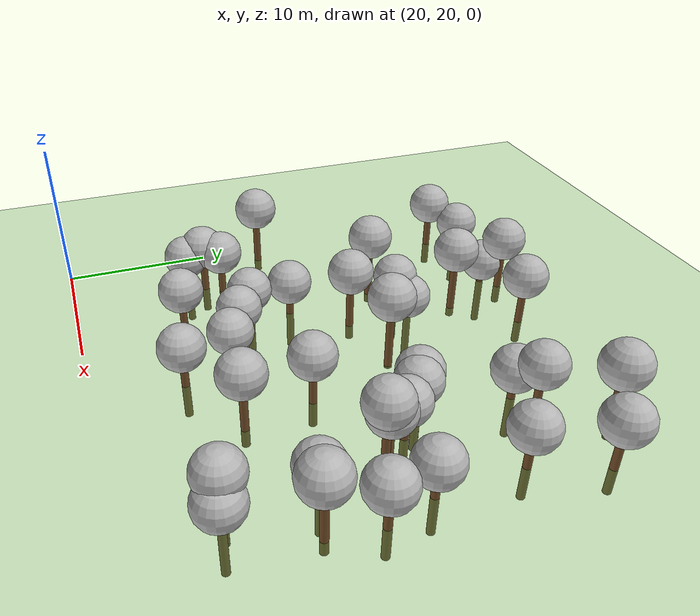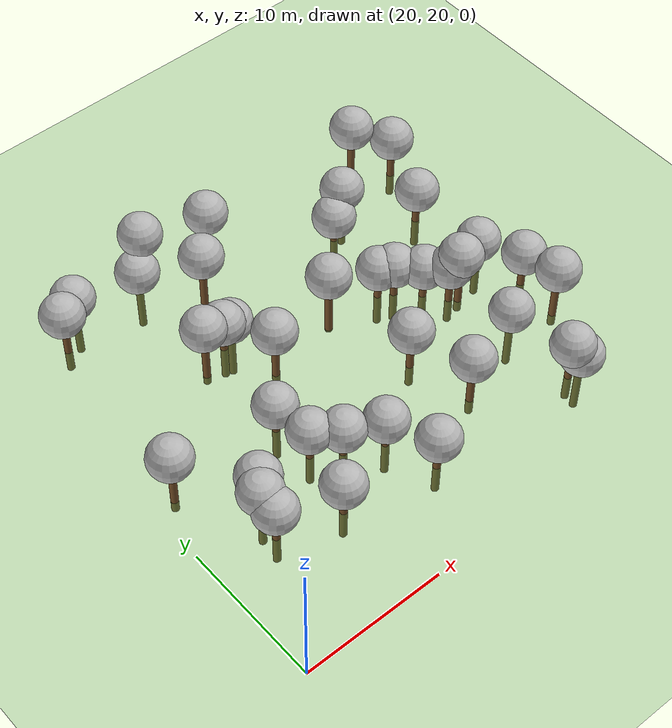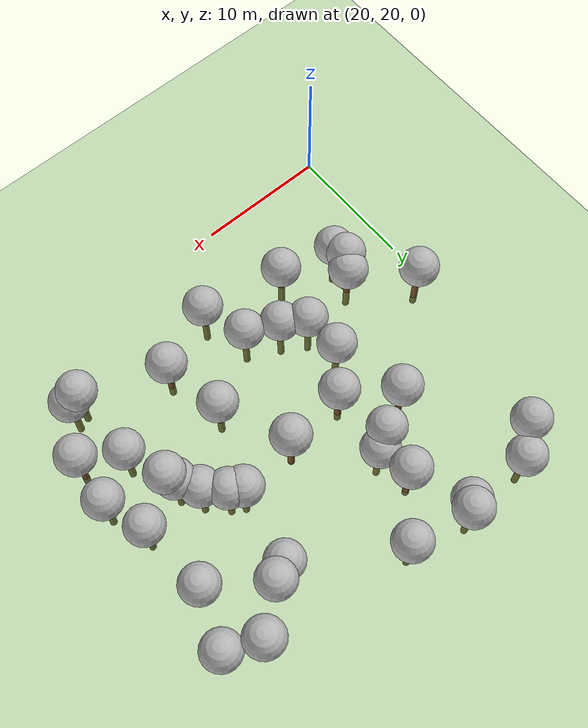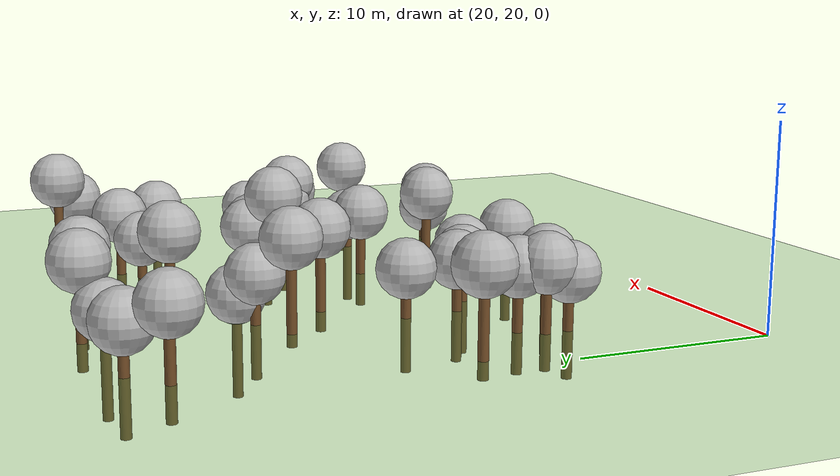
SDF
<sdf version="1.5">
 <world name="default">
  <model name="tree_simple475">
   <static>1</static>
   <link name="link">
    <pose>0 0 0.1 0 -0 0</pose>
    <collision name="collision_trunk">
     <pose>0 0 2 0 -0 0</pose>
     <geometry><cylinder><radius>0.25</radius><length>4</length></cylinder></geometry>
    </collision>
    <collision name="collision_treetop">
     <pose>0 0 5.2 0 -0 0</pose>
     <geometry><sphere><radius>1.5</radius></sphere></geometry>
    </collision>
    <visual name="trunk">
     <pose>0 0 2 0 -0 0</pose>
     <geometry><cylinder><radius>0.25</radius><length>4</length></cylinder></geometry>
     <material>
      <script>
       <uri>model://tree_simple/scripts</uri>
       <uri>model://tree_simple/materials/textures</uri>
       <name>TreeSimple/Trunk</name>
      </script>
     </material>
    </visual>
    <visual name="treetop">
     <pose>0 0 5.2 0 -0 0</pose>
     <geometry><sphere><radius>1.5</radius></sphere></geometry>
     <material>
      <script>
       <uri>model://tree_simple/scripts</uri>
       <uri>model://tree_simple/materials/textures</uri>
       <name>TreeSimple/Treetop</name>
      </script>
     </material>
    </visual>
   </link>
   <pose>30.9431222124 49.7431013716 -1.484301673260343 0 -0 0</pose>
  </model>
  <model name="tree_simple459">
   <static>1</static>
   <link name="link">
    <pose>0 0 0.1 0 -0 0</pose>
    <collision name="collision_trunk">
     <pose>0 0 2 0 -0 0</pose>
     <geometry><cylinder><radius>0.25</radius><length>4</length></cylinder></geometry>
    </collision>
    <collision name="collision_treetop">
     <pose>0 0 5.2 0 -0 0</pose>
     <geometry><sphere><radius>1.5</radius></sphere></geometry>
    </collision>
    <visual name="trunk">
     <pose>0 0 2 0 -0 0</pose>
     <geometry><cylinder><radius>0.25</radius><length>4</length></cylinder></geometry>
     <material>
      <script>
       <uri>model://tree_simple/scripts</uri>
       <uri>model://tree_simple/materials/textures</uri>
       <name>TreeSimple/Trunk</name>
      </script>
     </material>
    </visual>
    <visual name="treetop">
     <pose>0 0 5.2 0 -0 0</pose>
     <geometry><sphere><radius>1.5</radius></sphere></geometry>
     <material>
      <script>
       <uri>model://tree_simple/scripts</uri>
       <uri>model://tree_simple/materials/textures</uri>
       <name>TreeSimple/Treetop</name>
      </script>
     </material>
    </visual>
   </link>
   <pose>23.3051385383 47.6025012909 -1.8423031485954686 0 -0 0</pose>
  </model>
  <model name="tree_simple452">
   <static>1</static>
   <link name="link">
    <pose>0 0 0.1 0 -0 0</pose>
    <collision name="collision_trunk">
     <pose>0 0 2 0 -0 0</pose>
     <geometry><cylinder><radius>0.25</radius><length>4</length></cylinder></geometry>
    </collision>
    <collision name="collision_treetop">
     <pose>0 0 5.2 0 -0 0</pose>
     <geometry><sphere><radius>1.5</radius></sphere></geometry>
    </collision>
    <visual name="trunk">
     <pose>0 0 2 0 -0 0</pose>
     <geometry><cylinder><radius>0.25</radius><length>4</length></cylinder></geometry>
     <material>
      <script>
       <uri>model://tree_simple/scripts</uri>
       <uri>model://tree_simple/materials/textures</uri>
       <name>TreeSimple/Trunk</name>
      </script>
     </material>
    </visual>
    <visual name="treetop">
     <pose>0 0 5.2 0 -0 0</pose>
     <geometry><sphere><radius>1.5</radius></sphere></geometry>
     <material>
      <script>
       <uri>model://tree_simple/scripts</uri>
       <uri>model://tree_simple/materials/textures</uri>
       <name>TreeSimple/Treetop</name>
      </script>
     </material>
    </visual>
   </link>
   <pose>21.4881506157 34.0286005496 -1.0136431567923827 0 -0 0</pose>
  </model>
  <model name="tree_simple449">
   <static>1</static>
   <link name="link">
    <pose>0 0 0.1 0 -0 0</pose>
    <collision name="collision_trunk">
     <pose>0 0 2 0 -0 0</pose>
     <geometry><cylinder><radius>0.25</radius><length>4</length></cylinder></geometry>
    </collision>
    <collision name="collision_treetop">
     <pose>0 0 5.2 0 -0 0</pose>
     <geometry><sphere><radius>1.5</radius></sphere></geometry>
    </collision>
    <visual name="trunk">
     <pose>0 0 2 0 -0 0</pose>
     <geometry><cylinder><radius>0.25</radius><length>4</length></cylinder></geometry>
     <material>
      <script>
       <uri>model://tree_simple/scripts</uri>
       <uri>model://tree_simple/materials/textures</uri>
       <name>TreeSimple/Trunk</name>
      </script>
     </material>
    </visual>
    <visual name="treetop">
     <pose>0 0 5.2 0 -0 0</pose>
     <geometry><sphere><radius>1.5</radius></sphere></geometry>
     <material>
      <script>
       <uri>model://tree_simple/scripts</uri>
       <uri>model://tree_simple/materials/textures</uri>
       <name>TreeSimple/Treetop</name>
      </script>
     </material>
    </visual>
   </link>
   <pose>32.2301413543 37.584175072 -1.1562823140493863 0 -0 0</pose>
  </model>
  <model name="tree_simple435">
   <static>1</static>
   <link name="link">
    <pose>0 0 0.1 0 -0 0</pose>
    <collision name="collision_trunk">
     <pose>0 0 2 0 -0 0</pose>
     <geometry><cylinder><radius>0.25</radius><length>4</length></cylinder></geometry>
    </collision>
    <collision name="collision_treetop">
     <pose>0 0 5.2 0 -0 0</pose>
     <geometry><sphere><radius>1.5</radius></sphere></geometry>
    </collision>
    <visual name="trunk">
     <pose>0 0 2 0 -0 0</pose>
     <geometry><cylinder><radius>0.25</radius><length>4</length></cylinder></geometry>
     <material>
      <script>
       <uri>model://tree_simple/scripts</uri>
       <uri>model://tree_simple/materials/textures</uri>
       <name>TreeSimple/Trunk</name>
      </script>
     </material>
    </visual>
    <visual name="treetop">
     <pose>0 0 5.2 0 -0 0</pose>
     <geometry><sphere><radius>1.5</radius></sphere></geometry>
     <material>
      <script>
       <uri>model://tree_simple/scripts</uri>
       <uri>model://tree_simple/materials/textures</uri>
       <name>TreeSimple/Treetop</name>
      </script>
     </material>
    </visual>
   </link>
   <pose>25.0532985597 49.162593115 -2.878326971186958 0 -0 0</pose>
  </model>
  <model name="tree_simple426">
   <static>1</static>
   <link name="link">
    <pose>0 0 0.1 0 -0 0</pose>
    <collision name="collision_trunk">
     <pose>0 0 2 0 -0 0</pose>
     <geometry><cylinder><radius>0.25</radius><length>4</length></cylinder></geometry>
    </collision>
    <collision name="collision_treetop">
     <pose>0 0 5.2 0 -0 0</pose>
     <geometry><sphere><radius>1.5</radius></sphere></geometry>
    </collision>
    <visual name="trunk">
     <pose>0 0 2 0 -0 0</pose>
     <geometry><cylinder><radius>0.25</radius><length>4</length></cylinder></geometry>
     <material>
      <script>
       <uri>model://tree_simple/scripts</uri>
       <uri>model://tree_simple/materials/textures</uri>
       <name>TreeSimple/Trunk</name>
      </script>
     </material>
    </visual>
    <visual name="treetop">
     <pose>0 0 5.2 0 -0 0</pose>
     <geometry><sphere><radius>1.5</radius></sphere></geometry>
     <material>
      <script>
       <uri>model://tree_simple/scripts</uri>
       <uri>model://tree_simple/materials/textures</uri>
       <name>TreeSimple/Treetop</name>
      </script>
     </material>
    </visual>
   </link>
   <pose>48.2961501598 36.1951986296 -2.893288074802907 0 -0 0</pose>
  </model>
  <model name="tree_simple414">
   <static>1</static>
   <link name="link">
    <pose>0 0 0.1 0 -0 0</pose>
    <collision name="collision_trunk">
     <pose>0 0 2 0 -0 0</pose>
     <geometry><cylinder><radius>0.25</radius><length>4</length></cylinder></geometry>
    </collision>
    <collision name="collision_treetop">
     <pose>0 0 5.2 0 -0 0</pose>
     <geometry><sphere><radius>1.5</radius></sphere></geometry>
    </collision>
    <visual name="trunk">
     <pose>0 0 2 0 -0 0</pose>
     <geometry><cylinder><radius>0.25</radius><length>4</length></cylinder></geometry>
     <material>
      <script>
       <uri>model://tree_simple/scripts</uri>
       <uri>model://tree_simple/materials/textures</uri>
       <name>TreeSimple/Trunk</name>
      </script>
     </material>
    </visual>
    <visual name="treetop">
     <pose>0 0 5.2 0 -0 0</pose>
     <geometry><sphere><radius>1.5</radius></sphere></geometry>
     <material>
      <script>
       <uri>model://tree_simple/scripts</uri>
       <uri>model://tree_simple/materials/textures</uri>
       <name>TreeSimple/Treetop</name>
      </script>
     </material>
    </visual>
   </link>
   <pose>44.7953546514 35.1223055557 -2.1425868996998987 0 -0 0</pose>
  </model>
  <model name="tree_simple402">
   <static>1</static>
   <link name="link">
    <pose>0 0 0.1 0 -0 0</pose>
    <collision name="collision_trunk">
     <pose>0 0 2 0 -0 0</pose>
     <geometry><cylinder><radius>0.25</radius><length>4</length></cylinder></geometry>
    </collision>
    <collision name="collision_treetop">
     <pose>0 0 5.2 0 -0 0</pose>
     <geometry><sphere><radius>1.5</radius></sphere></geometry>
    </collision>
    <visual name="trunk">
     <pose>0 0 2 0 -0 0</pose>
     <geometry><cylinder><radius>0.25</radius><length>4</length></cylinder></geometry>
     <material>
      <script>
       <uri>model://tree_simple/scripts</uri>
       <uri>model://tree_simple/materials/textures</uri>
       <name>TreeSimple/Trunk</name>
      </script>
     </material>
    </visual>
    <visual name="treetop">
     <pose>0 0 5.2 0 -0 0</pose>
     <geometry><sphere><radius>1.5</radius></sphere></geometry>
     <material>
      <script>
       <uri>model://tree_simple/scripts</uri>
       <uri>model://tree_simple/materials/textures</uri>
       <name>TreeSimple/Treetop</name>
      </script>
     </material>
    </visual>
   </link>
   <pose>46.1530364681 25.5114731744 -2.1583834755632894 0 -0 0</pose>
  </model>
  <model name="tree_simple388">
   <static>1</static>
   <link name="link">
    <pose>0 0 0.1 0 -0 0</pose>
    <collision name="collision_trunk">
     <pose>0 0 2 0 -0 0</pose>
     <geometry><cylinder><radius>0.25</radius><length>4</length></cylinder></geometry>
    </collision>
    <collision name="collision_treetop">
     <pose>0 0 5.2 0 -0 0</pose>
     <geometry><sphere><radius>1.5</radius></sphere></geometry>
    </collision>
    <visual name="trunk">
     <pose>0 0 2 0 -0 0</pose>
     <geometry><cylinder><radius>0.25</radius><length>4</length></cylinder></geometry>
     <material>
      <script>
       <uri>model://tree_simple/scripts</uri>
       <uri>model://tree_simple/materials/textures</uri>
       <name>TreeSimple/Trunk</name>
      </script>
     </material>
    </visual>
    <visual name="treetop">
     <pose>0 0 5.2 0 -0 0</pose>
     <geometry><sphere><radius>1.5</radius></sphere></geometry>
     <material>
      <script>
       <uri>model://tree_simple/scripts</uri>
       <uri>model://tree_simple/materials/textures</uri>
       <name>TreeSimple/Treetop</name>
      </script>
     </material>
    </visual>
   </link>
   <pose>42.4041487093 37.8396173547 -2.604777848044164 0 -0 0</pose>
  </model>
  <model name="tree_simple384">
   <static>1</static>
   <link name="link">
    <pose>0 0 0.1 0 -0 0</pose>
    <collision name="collision_trunk">
     <pose>0 0 2 0 -0 0</pose>
     <geometry><cylinder><radius>0.25</radius><length>4</length></cylinder></geometry>
    </collision>
    <collision name="collision_treetop">
     <pose>0 0 5.2 0 -0 0</pose>
     <geometry><sphere><radius>1.5</radius></sphere></geometry>
    </collision>
    <visual name="trunk">
     <pose>0 0 2 0 -0 0</pose>
     <geometry><cylinder><radius>0.25</radius><length>4</length></cylinder></geometry>
     <material>
      <script>
       <uri>model://tree_simple/scripts</uri>
       <uri>model://tree_simple/materials/textures</uri>
       <name>TreeSimple/Trunk</name>
      </script>
     </material>
    </visual>
    <visual name="treetop">
     <pose>0 0 5.2 0 -0 0</pose>
     <geometry><sphere><radius>1.5</radius></sphere></geometry>
     <material>
      <script>
       <uri>model://tree_simple/scripts</uri>
       <uri>model://tree_simple/materials/textures</uri>
       <name>TreeSimple/Treetop</name>
      </script>
     </material>
    </visual>
   </link>
   <pose>47.965270182 41.8315973536 -2.480817509418271 0 -0 0</pose>
  </model>
  <model name="tree_simple366">
   <static>1</static>
   <link name="link">
    <pose>0 0 0.1 0 -0 0</pose>
    <collision name="collision_trunk">
     <pose>0 0 2 0 -0 0</pose>
     <geometry><cylinder><radius>0.25</radius><length>4</length></cylinder></geometry>
    </collision>
    <collision name="collision_treetop">
     <pose>0 0 5.2 0 -0 0</pose>
     <geometry><sphere><radius>1.5</radius></sphere></geometry>
    </collision>
    <visual name="trunk">
     <pose>0 0 2 0 -0 0</pose>
     <geometry><cylinder><radius>0.25</radius><length>4</length></cylinder></geometry>
     <material>
      <script>
       <uri>model://tree_simple/scripts</uri>
       <uri>model://tree_simple/materials/textures</uri>
       <name>TreeSimple/Trunk</name>
      </script>
     </material>
    </visual>
    <visual name="treetop">
     <pose>0 0 5.2 0 -0 0</pose>
     <geometry><sphere><radius>1.5</radius></sphere></geometry>
     <material>
      <script>
       <uri>model://tree_simple/scripts</uri>
       <uri>model://tree_simple/materials/textures</uri>
       <name>TreeSimple/Treetop</name>
      </script>
     </material>
    </visual>
   </link>
   <pose>37.2116014065 38.3075288524 -0.2869752398633221 0 -0 0</pose>
  </model>
  <model name="tree_simple345">
   <static>1</static>
   <link name="link">
    <pose>0 0 0.1 0 -0 0</pose>
    <collision name="collision_trunk">
     <pose>0 0 2 0 -0 0</pose>
     <geometry><cylinder><radius>0.25</radius><length>4</length></cylinder></geometry>
    </collision>
    <collision name="collision_treetop">
     <pose>0 0 5.2 0 -0 0</pose>
     <geometry><sphere><radius>1.5</radius></sphere></geometry>
    </collision>
    <visual name="trunk">
     <pose>0 0 2 0 -0 0</pose>
     <geometry><cylinder><radius>0.25</radius><length>4</length></cylinder></geometry>
     <material>
      <script>
       <uri>model://tree_simple/scripts</uri>
       <uri>model://tree_simple/materials/textures</uri>
       <name>TreeSimple/Trunk</name>
      </script>
     </material>
    </visual>
    <visual name="treetop">
     <pose>0 0 5.2 0 -0 0</pose>
     <geometry><sphere><radius>1.5</radius></sphere></geometry>
     <material>
      <script>
       <uri>model://tree_simple/scripts</uri>
       <uri>model://tree_simple/materials/textures</uri>
       <name>TreeSimple/Treetop</name>
      </script>
     </material>
    </visual>
   </link>
   <pose>28.6628994432 26.9095330542 -2.5678265981152495 0 -0 0</pose>
  </model>
  <model name="tree_simple337">
   <static>1</static>
   <link name="link">
    <pose>0 0 0.1 0 -0 0</pose>
    <collision name="collision_trunk">
     <pose>0 0 2 0 -0 0</pose>
     <geometry><cylinder><radius>0.25</radius><length>4</length></cylinder></geometry>
    </collision>
    <collision name="collision_treetop">
     <pose>0 0 5.2 0 -0 0</pose>
     <geometry><sphere><radius>1.5</radius></sphere></geometry>
    </collision>
    <visual name="trunk">
     <pose>0 0 2 0 -0 0</pose>
     <geometry><cylinder><radius>0.25</radius><length>4</length></cylinder></geometry>
     <material>
      <script>
       <uri>model://tree_simple/scripts</uri>
       <uri>model://tree_simple/materials/textures</uri>
       <name>TreeSimple/Trunk</name>
      </script>
     </material>
    </visual>
    <visual name="treetop">
     <pose>0 0 5.2 0 -0 0</pose>
     <geometry><sphere><radius>1.5</radius></sphere></geometry>
     <material>
      <script>
       <uri>model://tree_simple/scripts</uri>
       <uri>model://tree_simple/materials/textures</uri>
       <name>TreeSimple/Treetop</name>
      </script>
     </material>
    </visual>
   </link>
   <pose>43.9549385006 44.8684303608 -2.08475552292373 0 -0 0</pose>
  </model>
  <model name="tree_simple332">
   <static>1</static>
   <link name="link">
    <pose>0 0 0.1 0 -0 0</pose>
    <collision name="collision_trunk">
     <pose>0 0 2 0 -0 0</pose>
     <geometry><cylinder><radius>0.25</radius><length>4</length></cylinder></geometry>
    </collision>
    <collision name="collision_treetop">
     <pose>0 0 5.2 0 -0 0</pose>
     <geometry><sphere><radius>1.5</radius></sphere></geometry>
    </collision>
    <visual name="trunk">
     <pose>0 0 2 0 -0 0</pose>
     <geometry><cylinder><radius>0.25</radius><length>4</length></cylinder></geometry>
     <material>
      <script>
       <uri>model://tree_simple/scripts</uri>
       <uri>model://tree_simple/materials/textures</uri>
       <name>TreeSimple/Trunk</name>
      </script>
     </material>
    </visual>
    <visual name="treetop">
     <pose>0 0 5.2 0 -0 0</pose>
     <geometry><sphere><radius>1.5</radius></sphere></geometry>
     <material>
      <script>
       <uri>model://tree_simple/scripts</uri>
       <uri>model://tree_simple/materials/textures</uri>
       <name>TreeSimple/Treetop</name>
      </script>
     </material>
    </visual>
   </link>
   <pose>39.1289157524 32.636662066 -1.9198320465383505 0 -0 0</pose>
  </model>
  <model name="tree_simple313">
   <static>1</static>
   <link name="link">
    <pose>0 0 0.1 0 -0 0</pose>
    <collision name="collision_trunk">
     <pose>0 0 2 0 -0 0</pose>
     <geometry><cylinder><radius>0.25</radius><length>4</length></cylinder></geometry>
    </collision>
    <collision name="collision_treetop">
     <pose>0 0 5.2 0 -0 0</pose>
     <geometry><sphere><radius>1.5</radius></sphere></geometry>
    </collision>
    <visual name="trunk">
     <pose>0 0 2 0 -0 0</pose>
     <geometry><cylinder><radius>0.25</radius><length>4</length></cylinder></geometry>
     <material>
      <script>
       <uri>model://tree_simple/scripts</uri>
       <uri>model://tree_simple/materials/textures</uri>
       <name>TreeSimple/Trunk</name>
      </script>
     </material>
    </visual>
    <visual name="treetop">
     <pose>0 0 5.2 0 -0 0</pose>
     <geometry><sphere><radius>1.5</radius></sphere></geometry>
     <material>
      <script>
       <uri>model://tree_simple/scripts</uri>
       <uri>model://tree_simple/materials/textures</uri>
       <name>TreeSimple/Treetop</name>
      </script>
     </material>
    </visual>
   </link>
   <pose>25.1046881591 30.4098930382 -2.188091681080109 0 -0 0</pose>
  </model>
  <model name="tree_simple306">
   <static>1</static>
   <link name="link">
    <pose>0 0 0.1 0 -0 0</pose>
    <collision name="collision_trunk">
     <pose>0 0 2 0 -0 0</pose>
     <geometry><cylinder><radius>0.25</radius><length>4</length></cylinder></geometry>
    </collision>
    <collision name="collision_treetop">
     <pose>0 0 5.2 0 -0 0</pose>
     <geometry><sphere><radius>1.5</radius></sphere></geometry>
    </collision>
    <visual name="trunk">
     <pose>0 0 2 0 -0 0</pose>
     <geometry><cylinder><radius>0.25</radius><length>4</length></cylinder></geometry>
     <material>
      <script>
       <uri>model://tree_simple/scripts</uri>
       <uri>model://tree_simple/materials/textures</uri>
       <name>TreeSimple/Trunk</name>
      </script>
     </material>
    </visual>
    <visual name="treetop">
     <pose>0 0 5.2 0 -0 0</pose>
     <geometry><sphere><radius>1.5</radius></sphere></geometry>
     <material>
      <script>
       <uri>model://tree_simple/scripts</uri>
       <uri>model://tree_simple/materials/textures</uri>
       <name>TreeSimple/Treetop</name>
      </script>
     </material>
    </visual>
   </link>
   <pose>41.4749799485 38.3641433375 -2.6951391500968693 0 -0 0</pose>
  </model>
  <model name="tree_simple295">
   <static>1</static>
   <link name="link">
    <pose>0 0 0.1 0 -0 0</pose>
    <collision name="collision_trunk">
     <pose>0 0 2 0 -0 0</pose>
     <geometry><cylinder><radius>0.25</radius><length>4</length></cylinder></geometry>
    </collision>
    <collision name="collision_treetop">
     <pose>0 0 5.2 0 -0 0</pose>
     <geometry><sphere><radius>1.5</radius></sphere></geometry>
    </collision>
    <visual name="trunk">
     <pose>0 0 2 0 -0 0</pose>
     <geometry><cylinder><radius>0.25</radius><length>4</length></cylinder></geometry>
     <material>
      <script>
       <uri>model://tree_simple/scripts</uri>
       <uri>model://tree_simple/materials/textures</uri>
       <name>TreeSimple/Trunk</name>
      </script>
     </material>
    </visual>
    <visual name="treetop">
     <pose>0 0 5.2 0 -0 0</pose>
     <geometry><sphere><radius>1.5</radius></sphere></geometry>
     <material>
      <script>
       <uri>model://tree_simple/scripts</uri>
       <uri>model://tree_simple/materials/textures</uri>
       <name>TreeSimple/Treetop</name>
      </script>
     </material>
    </visual>
   </link>
   <pose>24.4545500201 28.0657933919 -2.490702164529107 0 -0 0</pose>
  </model>
  <model name="tree_simple294">
   <static>1</static>
   <link name="link">
    <pose>0 0 0.1 0 -0 0</pose>
    <collision name="collision_trunk">
     <pose>0 0 2 0 -0 0</pose>
     <geometry><cylinder><radius>0.25</radius><length>4</length></cylinder></geometry>
    </collision>
    <collision name="collision_treetop">
     <pose>0 0 5.2 0 -0 0</pose>
     <geometry><sphere><radius>1.5</radius></sphere></geometry>
    </collision>
    <visual name="trunk">
     <pose>0 0 2 0 -0 0</pose>
     <geometry><cylinder><radius>0.25</radius><length>4</length></cylinder></geometry>
     <material>
      <script>
       <uri>model://tree_simple/scripts</uri>
       <uri>model://tree_simple/materials/textures</uri>
       <name>TreeSimple/Trunk</name>
      </script>
     </material>
    </visual>
    <visual name="treetop">
     <pose>0 0 5.2 0 -0 0</pose>
     <geometry><sphere><radius>1.5</radius></sphere></geometry>
     <material>
      <script>
       <uri>model://tree_simple/scripts</uri>
       <uri>model://tree_simple/materials/textures</uri>
       <name>TreeSimple/Treetop</name>
      </script>
     </material>
    </visual>
   </link>
   <pose>29.4568486027 34.1994676111 -2.8798782709502238 0 -0 0</pose>
  </model>
  <model name="tree_simple265">
   <static>1</static>
   <link name="link">
    <pose>0 0 0.1 0 -0 0</pose>
    <collision name="collision_trunk">
     <pose>0 0 2 0 -0 0</pose>
     <geometry><cylinder><radius>0.25</radius><length>4</length></cylinder></geometry>
    </collision>
    <collision name="collision_treetop">
     <pose>0 0 5.2 0 -0 0</pose>
     <geometry><sphere><radius>1.5</radius></sphere></geometry>
    </collision>
    <visual name="trunk">
     <pose>0 0 2 0 -0 0</pose>
     <geometry><cylinder><radius>0.25</radius><length>4</length></cylinder></geometry>
     <material>
      <script>
       <uri>model://tree_simple/scripts</uri>
       <uri>model://tree_simple/materials/textures</uri>
       <name>TreeSimple/Trunk</name>
      </script>
     </material>
    </visual>
    <visual name="treetop">
     <pose>0 0 5.2 0 -0 0</pose>
     <geometry><sphere><radius>1.5</radius></sphere></geometry>
     <material>
      <script>
       <uri>model://tree_simple/scripts</uri>
       <uri>model://tree_simple/materials/textures</uri>
       <name>TreeSimple/Treetop</name>
      </script>
     </material>
    </visual>
   </link>
   <pose>49.0905511153 29.866561196 -1.0505646347586248 0 -0 0</pose>
  </model>
  <model name="tree_simple258">
   <static>1</static>
   <link name="link">
    <pose>0 0 0.1 0 -0 0</pose>
    <collision name="collision_trunk">
     <pose>0 0 2 0 -0 0</pose>
     <geometry><cylinder><radius>0.25</radius><length>4</length></cylinder></geometry>
    </collision>
    <collision name="collision_treetop">
     <pose>0 0 5.2 0 -0 0</pose>
     <geometry><sphere><radius>1.5</radius></sphere></geometry>
    </collision>
    <visual name="trunk">
     <pose>0 0 2 0 -0 0</pose>
     <geometry><cylinder><radius>0.25</radius><length>4</length></cylinder></geometry>
     <material>
      <script>
       <uri>model://tree_simple/scripts</uri>
       <uri>model://tree_simple/materials/textures</uri>
       <name>TreeSimple/Trunk</name>
      </script>
     </material>
    </visual>
    <visual name="treetop">
     <pose>0 0 5.2 0 -0 0</pose>
     <geometry><sphere><radius>1.5</radius></sphere></geometry>
     <material>
      <script>
       <uri>model://tree_simple/scripts</uri>
       <uri>model://tree_simple/materials/textures</uri>
       <name>TreeSimple/Treetop</name>
      </script>
     </material>
    </visual>
   </link>
   <pose>24.3825797899 29.2966391115 -1.9442324429266602 0 -0 0</pose>
  </model>
  <model name="tree_simple238">
   <static>1</static>
   <link name="link">
    <pose>0 0 0.1 0 -0 0</pose>
    <collision name="collision_trunk">
     <pose>0 0 2 0 -0 0</pose>
     <geometry><cylinder><radius>0.25</radius><length>4</length></cylinder></geometry>
    </collision>
    <collision name="collision_treetop">
     <pose>0 0 5.2 0 -0 0</pose>
     <geometry><sphere><radius>1.5</radius></sphere></geometry>
    </collision>
    <visual name="trunk">
     <pose>0 0 2 0 -0 0</pose>
     <geometry><cylinder><radius>0.25</radius><length>4</length></cylinder></geometry>
     <material>
      <script>
       <uri>model://tree_simple/scripts</uri>
       <uri>model://tree_simple/materials/textures</uri>
       <name>TreeSimple/Trunk</name>
      </script>
     </material>
    </visual>
    <visual name="treetop">
     <pose>0 0 5.2 0 -0 0</pose>
     <geometry><sphere><radius>1.5</radius></sphere></geometry>
     <material>
      <script>
       <uri>model://tree_simple/scripts</uri>
       <uri>model://tree_simple/materials/textures</uri>
       <name>TreeSimple/Treetop</name>
      </script>
     </material>
    </visual>
   </link>
   <pose>46.8869167901 25.2834545483 -3.4586773292989923 0 -0 0</pose>
  </model>
  <model name="tree_simple230">
   <static>1</static>
   <link name="link">
    <pose>0 0 0.1 0 -0 0</pose>
    <collision name="collision_trunk">
     <pose>0 0 2 0 -0 0</pose>
     <geometry><cylinder><radius>0.25</radius><length>4</length></cylinder></geometry>
    </collision>
    <collision name="collision_treetop">
     <pose>0 0 5.2 0 -0 0</pose>
     <geometry><sphere><radius>1.5</radius></sphere></geometry>
    </collision>
    <visual name="trunk">
     <pose>0 0 2 0 -0 0</pose>
     <geometry><cylinder><radius>0.25</radius><length>4</length></cylinder></geometry>
     <material>
      <script>
       <uri>model://tree_simple/scripts</uri>
       <uri>model://tree_simple/materials/textures</uri>
       <name>TreeSimple/Trunk</name>
      </script>
     </material>
    </visual>
    <visual name="treetop">
     <pose>0 0 5.2 0 -0 0</pose>
     <geometry><sphere><radius>1.5</radius></sphere></geometry>
     <material>
      <script>
       <uri>model://tree_simple/scripts</uri>
       <uri>model://tree_simple/materials/textures</uri>
       <name>TreeSimple/Treetop</name>
      </script>
     </material>
    </visual>
   </link>
   <pose>49.3839982887 33.0886722223 -2.373536500355815 0 -0 0</pose>
  </model>
  <model name="tree_simple197">
   <static>1</static>
   <link name="link">
    <pose>0 0 0.1 0 -0 0</pose>
    <collision name="collision_trunk">
     <pose>0 0 2 0 -0 0</pose>
     <geometry><cylinder><radius>0.25</radius><length>4</length></cylinder></geometry>
    </collision>
    <collision name="collision_treetop">
     <pose>0 0 5.2 0 -0 0</pose>
     <geometry><sphere><radius>1.5</radius></sphere></geometry>
    </collision>
    <visual name="trunk">
     <pose>0 0 2 0 -0 0</pose>
     <geometry><cylinder><radius>0.25</radius><length>4</length></cylinder></geometry>
     <material>
      <script>
       <uri>model://tree_simple/scripts</uri>
       <uri>model://tree_simple/materials/textures</uri>
       <name>TreeSimple/Trunk</name>
      </script>
     </material>
    </visual>
    <visual name="treetop">
     <pose>0 0 5.2 0 -0 0</pose>
     <geometry><sphere><radius>1.5</radius></sphere></geometry>
     <material>
      <script>
       <uri>model://tree_simple/scripts</uri>
       <uri>model://tree_simple/materials/textures</uri>
       <name>TreeSimple/Treetop</name>
      </script>
     </material>
    </visual>
   </link>
   <pose>45.2259514073 34.7129577048 -1.0524190094808348 0 -0 0</pose>
  </model>
  <model name="tree_simple190">
   <static>1</static>
   <link name="link">
    <pose>0 0 0.1 0 -0 0</pose>
    <collision name="collision_trunk">
     <pose>0 0 2 0 -0 0</pose>
     <geometry><cylinder><radius>0.25</radius><length>4</length></cylinder></geometry>
    </collision>
    <collision name="collision_treetop">
     <pose>0 0 5.2 0 -0 0</pose>
     <geometry><sphere><radius>1.5</radius></sphere></geometry>
    </collision>
    <visual name="trunk">
     <pose>0 0 2 0 -0 0</pose>
     <geometry><cylinder><radius>0.25</radius><length>4</length></cylinder></geometry>
     <material>
      <script>
       <uri>model://tree_simple/scripts</uri>
       <uri>model://tree_simple/materials/textures</uri>
       <name>TreeSimple/Trunk</name>
      </script>
     </material>
    </visual>
    <visual name="treetop">
     <pose>0 0 5.2 0 -0 0</pose>
     <geometry><sphere><radius>1.5</radius></sphere></geometry>
     <material>
      <script>
       <uri>model://tree_simple/scripts</uri>
       <uri>model://tree_simple/materials/textures</uri>
       <name>TreeSimple/Treetop</name>
      </script>
     </material>
    </visual>
   </link>
   <pose>33.8682165362 29.0192768916 -2.8872444390874166 0 -0 0</pose>
  </model>
  <model name="tree_simple180">
   <static>1</static>
   <link name="link">
    <pose>0 0 0.1 0 -0 0</pose>
    <collision name="collision_trunk">
     <pose>0 0 2 0 -0 0</pose>
     <geometry><cylinder><radius>0.25</radius><length>4</length></cylinder></geometry>
    </collision>
    <collision name="collision_treetop">
     <pose>0 0 5.2 0 -0 0</pose>
     <geometry><sphere><radius>1.5</radius></sphere></geometry>
    </collision>
    <visual name="trunk">
     <pose>0 0 2 0 -0 0</pose>
     <geometry><cylinder><radius>0.25</radius><length>4</length></cylinder></geometry>
     <material>
      <script>
       <uri>model://tree_simple/scripts</uri>
       <uri>model://tree_simple/materials/textures</uri>
       <name>TreeSimple/Trunk</name>
      </script>
     </material>
    </visual>
    <visual name="treetop">
     <pose>0 0 5.2 0 -0 0</pose>
     <geometry><sphere><radius>1.5</radius></sphere></geometry>
     <material>
      <script>
       <uri>model://tree_simple/scripts</uri>
       <uri>model://tree_simple/materials/textures</uri>
       <name>TreeSimple/Treetop</name>
      </script>
     </material>
    </visual>
   </link>
   <pose>31.0354412198 41.3621247095 -2.853683002499159 0 -0 0</pose>
  </model>
  <model name="tree_simple164">
   <static>1</static>
   <link name="link">
    <pose>0 0 0.1 0 -0 0</pose>
    <collision name="collision_trunk">
     <pose>0 0 2 0 -0 0</pose>
     <geometry><cylinder><radius>0.25</radius><length>4</length></cylinder></geometry>
    </collision>
    <collision name="collision_treetop">
     <pose>0 0 5.2 0 -0 0</pose>
     <geometry><sphere><radius>1.5</radius></sphere></geometry>
    </collision>
    <visual name="trunk">
     <pose>0 0 2 0 -0 0</pose>
     <geometry><cylinder><radius>0.25</radius><length>4</length></cylinder></geometry>
     <material>
      <script>
       <uri>model://tree_simple/scripts</uri>
       <uri>model://tree_simple/materials/textures</uri>
       <name>TreeSimple/Trunk</name>
      </script>
     </material>
    </visual>
    <visual name="treetop">
     <pose>0 0 5.2 0 -0 0</pose>
     <geometry><sphere><radius>1.5</radius></sphere></geometry>
     <material>
      <script>
       <uri>model://tree_simple/scripts</uri>
       <uri>model://tree_simple/materials/textures</uri>
       <name>TreeSimple/Treetop</name>
      </script>
     </material>
    </visual>
   </link>
   <pose>32.4161735763 45.136147052 -0.7844479650751821 0 -0 0</pose>
  </model>
  <model name="tree_simple159">
   <static>1</static>
   <link name="link">
    <pose>0 0 0.1 0 -0 0</pose>
    <collision name="collision_trunk">
     <pose>0 0 2 0 -0 0</pose>
     <geometry><cylinder><radius>0.25</radius><length>4</length></cylinder></geometry>
    </collision>
    <collision name="collision_treetop">
     <pose>0 0 5.2 0 -0 0</pose>
     <geometry><sphere><radius>1.5</radius></sphere></geometry>
    </collision>
    <visual name="trunk">
     <pose>0 0 2 0 -0 0</pose>
     <geometry><cylinder><radius>0.25</radius><length>4</length></cylinder></geometry>
     <material>
      <script>
       <uri>model://tree_simple/scripts</uri>
       <uri>model://tree_simple/materials/textures</uri>
       <name>TreeSimple/Trunk</name>
      </script>
     </material>
    </visual>
    <visual name="treetop">
     <pose>0 0 5.2 0 -0 0</pose>
     <geometry><sphere><radius>1.5</radius></sphere></geometry>
     <material>
      <script>
       <uri>model://tree_simple/scripts</uri>
       <uri>model://tree_simple/materials/textures</uri>
       <name>TreeSimple/Treetop</name>
      </script>
     </material>
    </visual>
   </link>
   <pose>28.8379877366 40.3060921844 -0.7756043078325496 0 -0 0</pose>
  </model>
  <model name="tree_simple150">
   <static>1</static>
   <link name="link">
    <pose>0 0 0.1 0 -0 0</pose>
    <collision name="collision_trunk">
     <pose>0 0 2 0 -0 0</pose>
     <geometry><cylinder><radius>0.25</radius><length>4</length></cylinder></geometry>
    </collision>
    <collision name="collision_treetop">
     <pose>0 0 5.2 0 -0 0</pose>
     <geometry><sphere><radius>1.5</radius></sphere></geometry>
    </collision>
    <visual name="trunk">
     <pose>0 0 2 0 -0 0</pose>
     <geometry><cylinder><radius>0.25</radius><length>4</length></cylinder></geometry>
     <material>
      <script>
       <uri>model://tree_simple/scripts</uri>
       <uri>model://tree_simple/materials/textures</uri>
       <name>TreeSimple/Trunk</name>
      </script>
     </material>
    </visual>
    <visual name="treetop">
     <pose>0 0 5.2 0 -0 0</pose>
     <geometry><sphere><radius>1.5</radius></sphere></geometry>
     <material>
      <script>
       <uri>model://tree_simple/scripts</uri>
       <uri>model://tree_simple/materials/textures</uri>
       <name>TreeSimple/Treetop</name>
      </script>
     </material>
    </visual>
   </link>
   <pose>40.1655547132 28.2074332225 -1.3425328261248441 0 -0 0</pose>
  </model>
  <model name="tree_simple144">
   <static>1</static>
   <link name="link">
    <pose>0 0 0.1 0 -0 0</pose>
    <collision name="collision_trunk">
     <pose>0 0 2 0 -0 0</pose>
     <geometry><cylinder><radius>0.25</radius><length>4</length></cylinder></geometry>
    </collision>
    <collision name="collision_treetop">
     <pose>0 0 5.2 0 -0 0</pose>
     <geometry><sphere><radius>1.5</radius></sphere></geometry>
    </collision>
    <visual name="trunk">
     <pose>0 0 2 0 -0 0</pose>
     <geometry><cylinder><radius>0.25</radius><length>4</length></cylinder></geometry>
     <material>
      <script>
       <uri>model://tree_simple/scripts</uri>
       <uri>model://tree_simple/materials/textures</uri>
       <name>TreeSimple/Trunk</name>
      </script>
     </material>
    </visual>
    <visual name="treetop">
     <pose>0 0 5.2 0 -0 0</pose>
     <geometry><sphere><radius>1.5</radius></sphere></geometry>
     <material>
      <script>
       <uri>model://tree_simple/scripts</uri>
       <uri>model://tree_simple/materials/textures</uri>
       <name>TreeSimple/Treetop</name>
      </script>
     </material>
    </visual>
   </link>
   <pose>29.8740769381 48.8863352602 -3.61044775597722 0 -0 0</pose>
  </model>
  <model name="tree_simple131">
   <static>1</static>
   <link name="link">
    <pose>0 0 0.1 0 -0 0</pose>
    <collision name="collision_trunk">
     <pose>0 0 2 0 -0 0</pose>
     <geometry><cylinder><radius>0.25</radius><length>4</length></cylinder></geometry>
    </collision>
    <collision name="collision_treetop">
     <pose>0 0 5.2 0 -0 0</pose>
     <geometry><sphere><radius>1.5</radius></sphere></geometry>
    </collision>
    <visual name="trunk">
     <pose>0 0 2 0 -0 0</pose>
     <geometry><cylinder><radius>0.25</radius><length>4</length></cylinder></geometry>
     <material>
      <script>
       <uri>model://tree_simple/scripts</uri>
       <uri>model://tree_simple/materials/textures</uri>
       <name>TreeSimple/Trunk</name>
      </script>
     </material>
    </visual>
    <visual name="treetop">
     <pose>0 0 5.2 0 -0 0</pose>
     <geometry><sphere><radius>1.5</radius></sphere></geometry>
     <material>
      <script>
       <uri>model://tree_simple/scripts</uri>
       <uri>model://tree_simple/materials/textures</uri>
       <name>TreeSimple/Treetop</name>
      </script>
     </material>
    </visual>
   </link>
   <pose>46.034478037 30.677477771 -3.4058971448020325 0 -0 0</pose>
  </model>
  <model name="tree_simple99">
   <static>1</static>
   <link name="link">
    <pose>0 0 0.1 0 -0 0</pose>
    <collision name="collision_trunk">
     <pose>0 0 2 0 -0 0</pose>
     <geometry><cylinder><radius>0.25</radius><length>4</length></cylinder></geometry>
    </collision>
    <collision name="collision_treetop">
     <pose>0 0 5.2 0 -0 0</pose>
     <geometry><sphere><radius>1.5</radius></sphere></geometry>
    </collision>
    <visual name="trunk">
     <pose>0 0 2 0 -0 0</pose>
     <geometry><cylinder><radius>0.25</radius><length>4</length></cylinder></geometry>
     <material>
      <script>
       <uri>model://tree_simple/scripts</uri>
       <uri>model://tree_simple/materials/textures</uri>
       <name>TreeSimple/Trunk</name>
      </script>
     </material>
    </visual>
    <visual name="treetop">
     <pose>0 0 5.2 0 -0 0</pose>
     <geometry><sphere><radius>1.5</radius></sphere></geometry>
     <material>
      <script>
       <uri>model://tree_simple/scripts</uri>
       <uri>model://tree_simple/materials/textures</uri>
       <name>TreeSimple/Treetop</name>
      </script>
     </material>
    </visual>
   </link>
   <pose>43.7646885834 36.5094094544 -2.640061083733193 0 -0 0</pose>
  </model>
  <model name="tree_simple97">
   <static>1</static>
   <link name="link">
    <pose>0 0 0.1 0 -0 0</pose>
    <collision name="collision_trunk">
     <pose>0 0 2 0 -0 0</pose>
     <geometry><cylinder><radius>0.25</radius><length>4</length></cylinder></geometry>
    </collision>
    <collision name="collision_treetop">
     <pose>0 0 5.2 0 -0 0</pose>
     <geometry><sphere><radius>1.5</radius></sphere></geometry>
    </collision>
    <visual name="trunk">
     <pose>0 0 2 0 -0 0</pose>
     <geometry><cylinder><radius>0.25</radius><length>4</length></cylinder></geometry>
     <material>
      <script>
       <uri>model://tree_simple/scripts</uri>
       <uri>model://tree_simple/materials/textures</uri>
       <name>TreeSimple/Trunk</name>
      </script>
     </material>
    </visual>
    <visual name="treetop">
     <pose>0 0 5.2 0 -0 0</pose>
     <geometry><sphere><radius>1.5</radius></sphere></geometry>
     <material>
      <script>
       <uri>model://tree_simple/scripts</uri>
       <uri>model://tree_simple/materials/textures</uri>
       <name>TreeSimple/Treetop</name>
      </script>
     </material>
    </visual>
   </link>
   <pose>31.4551659001 30.1710524081 -2.8831623300659914 0 -0 0</pose>
  </model>
  <model name="tree_simple78">
   <static>1</static>
   <link name="link">
    <pose>0 0 0.1 0 -0 0</pose>
    <collision name="collision_trunk">
     <pose>0 0 2 0 -0 0</pose>
     <geometry><cylinder><radius>0.25</radius><length>4</length></cylinder></geometry>
    </collision>
    <collision name="collision_treetop">
     <pose>0 0 5.2 0 -0 0</pose>
     <geometry><sphere><radius>1.5</radius></sphere></geometry>
    </collision>
    <visual name="trunk">
     <pose>0 0 2 0 -0 0</pose>
     <geometry><cylinder><radius>0.25</radius><length>4</length></cylinder></geometry>
     <material>
      <script>
       <uri>model://tree_simple/scripts</uri>
       <uri>model://tree_simple/materials/textures</uri>
       <name>TreeSimple/Trunk</name>
      </script>
     </material>
    </visual>
    <visual name="treetop">
     <pose>0 0 5.2 0 -0 0</pose>
     <geometry><sphere><radius>1.5</radius></sphere></geometry>
     <material>
      <script>
       <uri>model://tree_simple/scripts</uri>
       <uri>model://tree_simple/materials/textures</uri>
       <name>TreeSimple/Treetop</name>
      </script>
     </material>
    </visual>
   </link>
   <pose>35.525854971 48.7689145504 -1.790363432608367 0 -0 0</pose>
  </model>
  <model name="tree_simple65">
   <static>1</static>
   <link name="link">
    <pose>0 0 0.1 0 -0 0</pose>
    <collision name="collision_trunk">
     <pose>0 0 2 0 -0 0</pose>
     <geometry><cylinder><radius>0.25</radius><length>4</length></cylinder></geometry>
    </collision>
    <collision name="collision_treetop">
     <pose>0 0 5.2 0 -0 0</pose>
     <geometry><sphere><radius>1.5</radius></sphere></geometry>
    </collision>
    <visual name="trunk">
     <pose>0 0 2 0 -0 0</pose>
     <geometry><cylinder><radius>0.25</radius><length>4</length></cylinder></geometry>
     <material>
      <script>
       <uri>model://tree_simple/scripts</uri>
       <uri>model://tree_simple/materials/textures</uri>
       <name>TreeSimple/Trunk</name>
      </script>
     </material>
    </visual>
    <visual name="treetop">
     <pose>0 0 5.2 0 -0 0</pose>
     <geometry><sphere><radius>1.5</radius></sphere></geometry>
     <material>
      <script>
       <uri>model://tree_simple/scripts</uri>
       <uri>model://tree_simple/materials/textures</uri>
       <name>TreeSimple/Treetop</name>
      </script>
     </material>
    </visual>
   </link>
   <pose>42.5612978855 44.0438819022 -3.166424538783466 0 -0 0</pose>
  </model>
  <model name="tree_simple47">
   <static>1</static>
   <link name="link">
    <pose>0 0 0.1 0 -0 0</pose>
    <collision name="collision_trunk">
     <pose>0 0 2 0 -0 0</pose>
     <geometry><cylinder><radius>0.25</radius><length>4</length></cylinder></geometry>
    </collision>
    <collision name="collision_treetop">
     <pose>0 0 5.2 0 -0 0</pose>
     <geometry><sphere><radius>1.5</radius></sphere></geometry>
    </collision>
    <visual name="trunk">
     <pose>0 0 2 0 -0 0</pose>
     <geometry><cylinder><radius>0.25</radius><length>4</length></cylinder></geometry>
     <material>
      <script>
       <uri>model://tree_simple/scripts</uri>
       <uri>model://tree_simple/materials/textures</uri>
       <name>TreeSimple/Trunk</name>
      </script>
     </material>
    </visual>
    <visual name="treetop">
     <pose>0 0 5.2 0 -0 0</pose>
     <geometry><sphere><radius>1.5</radius></sphere></geometry>
     <material>
      <script>
       <uri>model://tree_simple/scripts</uri>
       <uri>model://tree_simple/materials/textures</uri>
       <name>TreeSimple/Treetop</name>
      </script>
     </material>
    </visual>
   </link>
   <pose>29.7448798929 31.3110169918 -2.7328992291303136 0 -0 0</pose>
  </model>
  <model name="tree_simple44">
   <static>1</static>
   <link name="link">
    <pose>0 0 0.1 0 -0 0</pose>
    <collision name="collision_trunk">
     <pose>0 0 2 0 -0 0</pose>
     <geometry><cylinder><radius>0.25</radius><length>4</length></cylinder></geometry>
    </collision>
    <collision name="collision_treetop">
     <pose>0 0 5.2 0 -0 0</pose>
     <geometry><sphere><radius>1.5</radius></sphere></geometry>
    </collision>
    <visual name="trunk">
     <pose>0 0 2 0 -0 0</pose>
     <geometry><cylinder><radius>0.25</radius><length>4</length></cylinder></geometry>
     <material>
      <script>
       <uri>model://tree_simple/scripts</uri>
       <uri>model://tree_simple/materials/textures</uri>
       <name>TreeSimple/Trunk</name>
      </script>
     </material>
    </visual>
    <visual name="treetop">
     <pose>0 0 5.2 0 -0 0</pose>
     <geometry><sphere><radius>1.5</radius></sphere></geometry>
     <material>
      <script>
       <uri>model://tree_simple/scripts</uri>
       <uri>model://tree_simple/materials/textures</uri>
       <name>TreeSimple/Treetop</name>
      </script>
     </material>
    </visual>
   </link>
   <pose>35.1253684335 25.7534131059 -2.5037643659427413 0 -0 0</pose>
  </model>
  <model name="tree_simple33">
   <static>1</static>
   <link name="link">
    <pose>0 0 0.1 0 -0 0</pose>
    <collision name="collision_trunk">
     <pose>0 0 2 0 -0 0</pose>
     <geometry><cylinder><radius>0.25</radius><length>4</length></cylinder></geometry>
    </collision>
    <collision name="collision_treetop">
     <pose>0 0 5.2 0 -0 0</pose>
     <geometry><sphere><radius>1.5</radius></sphere></geometry>
    </collision>
    <visual name="trunk">
     <pose>0 0 2 0 -0 0</pose>
     <geometry><cylinder><radius>0.25</radius><length>4</length></cylinder></geometry>
     <material>
      <script>
       <uri>model://tree_simple/scripts</uri>
       <uri>model://tree_simple/materials/textures</uri>
       <name>TreeSimple/Trunk</name>
      </script>
     </material>
    </visual>
    <visual name="treetop">
     <pose>0 0 5.2 0 -0 0</pose>
     <geometry><sphere><radius>1.5</radius></sphere></geometry>
     <material>
      <script>
       <uri>model://tree_simple/scripts</uri>
       <uri>model://tree_simple/materials/textures</uri>
       <name>TreeSimple/Treetop</name>
      </script>
     </material>
    </visual>
   </link>
   <pose>49.5679198659 46.2009891227 -1.9534209910230294 0 -0 0</pose>
  </model>
  <model name="tree_simple24">
   <static>1</static>
   <link name="link">
    <pose>0 0 0.1 0 -0 0</pose>
    <collision name="collision_trunk">
     <pose>0 0 2 0 -0 0</pose>
     <geometry><cylinder><radius>0.25</radius><length>4</length></cylinder></geometry>
    </collision>
    <collision name="collision_treetop">
     <pose>0 0 5.2 0 -0 0</pose>
     <geometry><sphere><radius>1.5</radius></sphere></geometry>
    </collision>
    <visual name="trunk">
     <pose>0 0 2 0 -0 0</pose>
     <geometry><cylinder><radius>0.25</radius><length>4</length></cylinder></geometry>
     <material>
      <script>
       <uri>model://tree_simple/scripts</uri>
       <uri>model://tree_simple/materials/textures</uri>
       <name>TreeSimple/Trunk</name>
      </script>
     </material>
    </visual>
    <visual name="treetop">
     <pose>0 0 5.2 0 -0 0</pose>
     <geometry><sphere><radius>1.5</radius></sphere></geometry>
     <material>
      <script>
       <uri>model://tree_simple/scripts</uri>
       <uri>model://tree_simple/materials/textures</uri>
       <name>TreeSimple/Treetop</name>
      </script>
     </material>
    </visual>
   </link>
   <pose>32.0910142743 41.9793908422 -4.0 0 -0 0</pose>
  </model>
  <model name="tree_simple11">
   <static>1</static>
   <link name="link">
    <pose>0 0 0.1 0 -0 0</pose>
    <collision name="collision_trunk">
     <pose>0 0 2 0 -0 0</pose>
     <geometry><cylinder><radius>0.25</radius><length>4</length></cylinder></geometry>
    </collision>
    <collision name="collision_treetop">
     <pose>0 0 5.2 0 -0 0</pose>
     <geometry><sphere><radius>1.5</radius></sphere></geometry>
    </collision>
    <visual name="trunk">
     <pose>0 0 2 0 -0 0</pose>
     <geometry><cylinder><radius>0.25</radius><length>4</length></cylinder></geometry>
     <material>
      <script>
       <uri>model://tree_simple/scripts</uri>
       <uri>model://tree_simple/materials/textures</uri>
       <name>TreeSimple/Trunk</name>
      </script>
     </material>
    </visual>
    <visual name="treetop">
     <pose>0 0 5.2 0 -0 0</pose>
     <geometry><sphere><radius>1.5</radius></sphere></geometry>
     <material>
      <script>
       <uri>model://tree_simple/scripts</uri>
       <uri>model://tree_simple/materials/textures</uri>
       <name>TreeSimple/Treetop</name>
      </script>
     </material>
    </visual>
   </link>
   <pose>47.1204794218 47.5889686544 -0.4739442264104379 0 -0 0</pose>
  </model>
  <model name="ground_plane">
   <static>true</static>
   <link name="link">
    <collision name="collision">
     <geometry><plane><normal>0 0 1</normal><size>250 250</size></plane></geometry>
     <surface><friction><ode><mu>1</mu><mu2>1</mu2></ode></friction></surface>
    </collision>
    <visual name="grass">
     <cast_shadows>false</cast_shadows>
     <geometry><plane><normal>0 0 1</normal><size>150 250</size></plane></geometry>
     <material>
      <script><uri>file://media/materials/scripts/Gazebo.material</uri><name>Gazebo/Grass</name></script>
     </material>
    </visual>
   </link>
  </model>
 </world>
</sdf>
